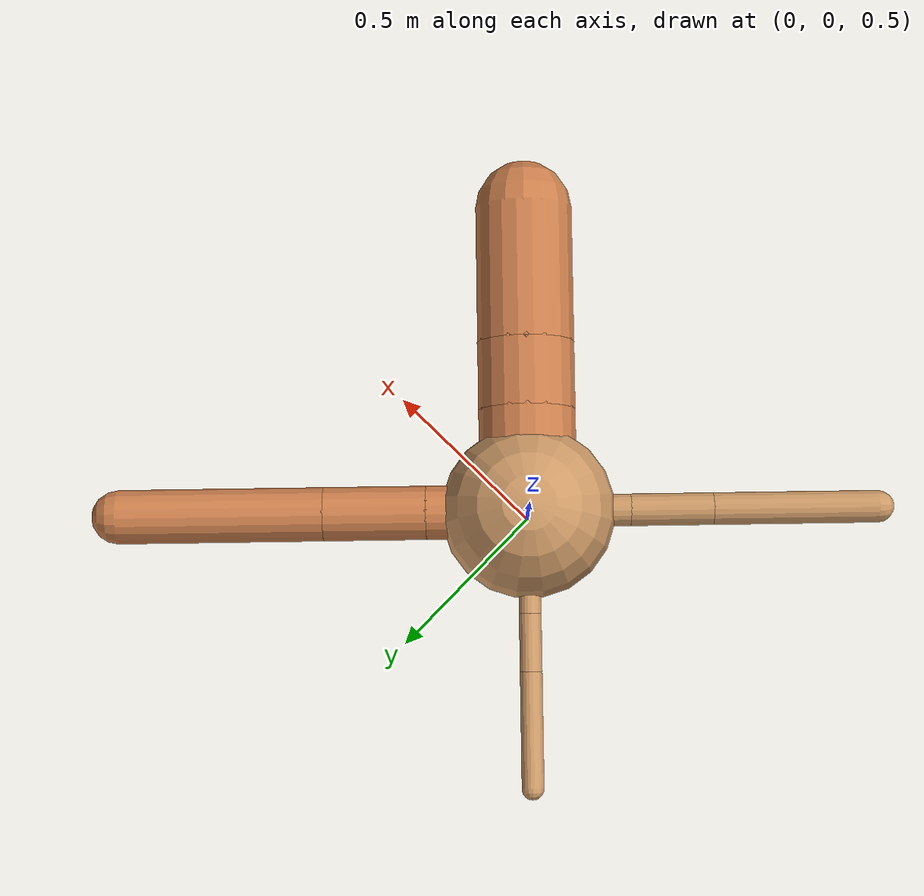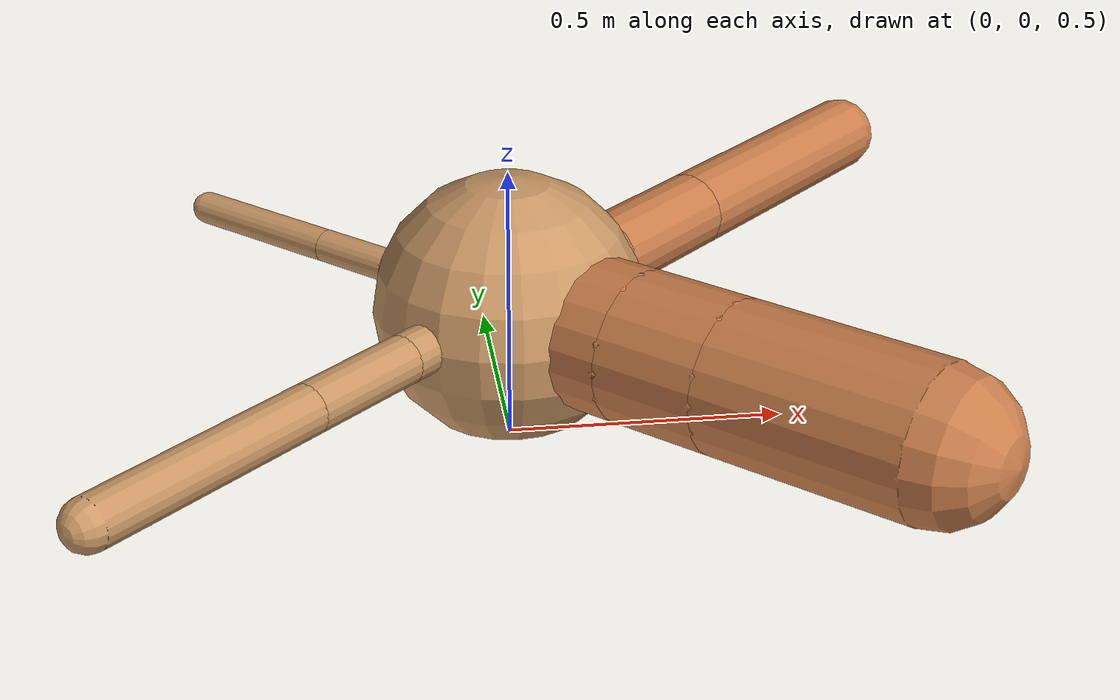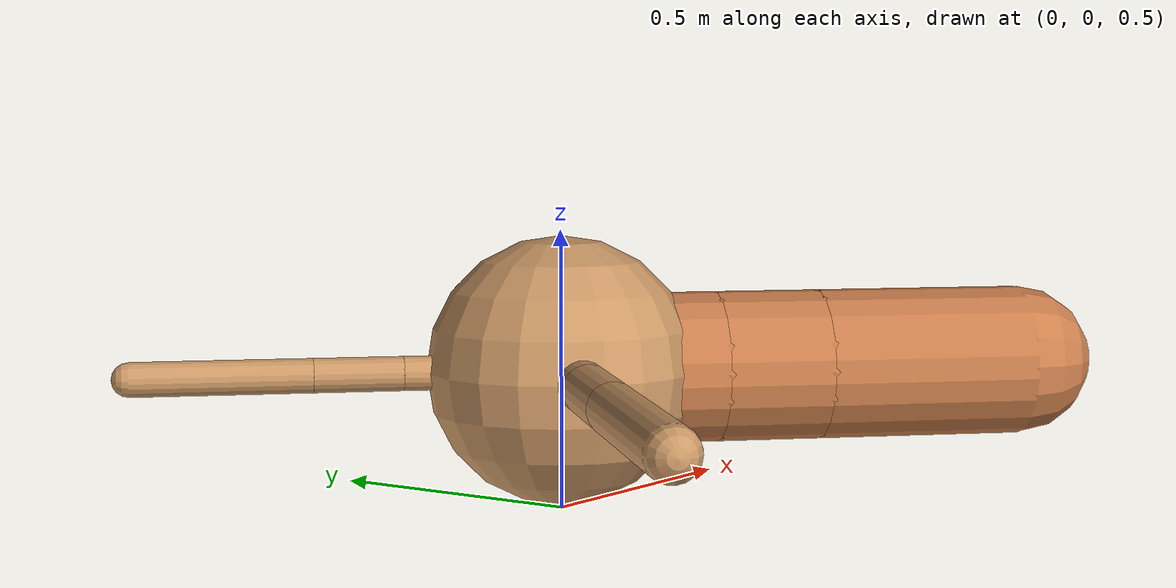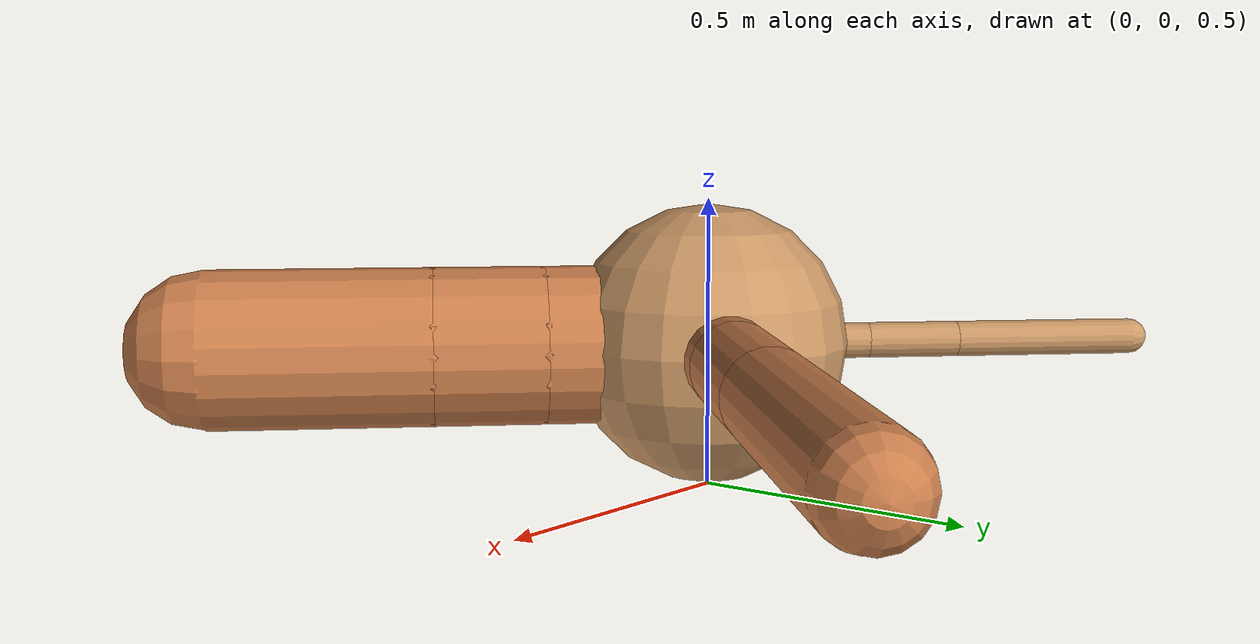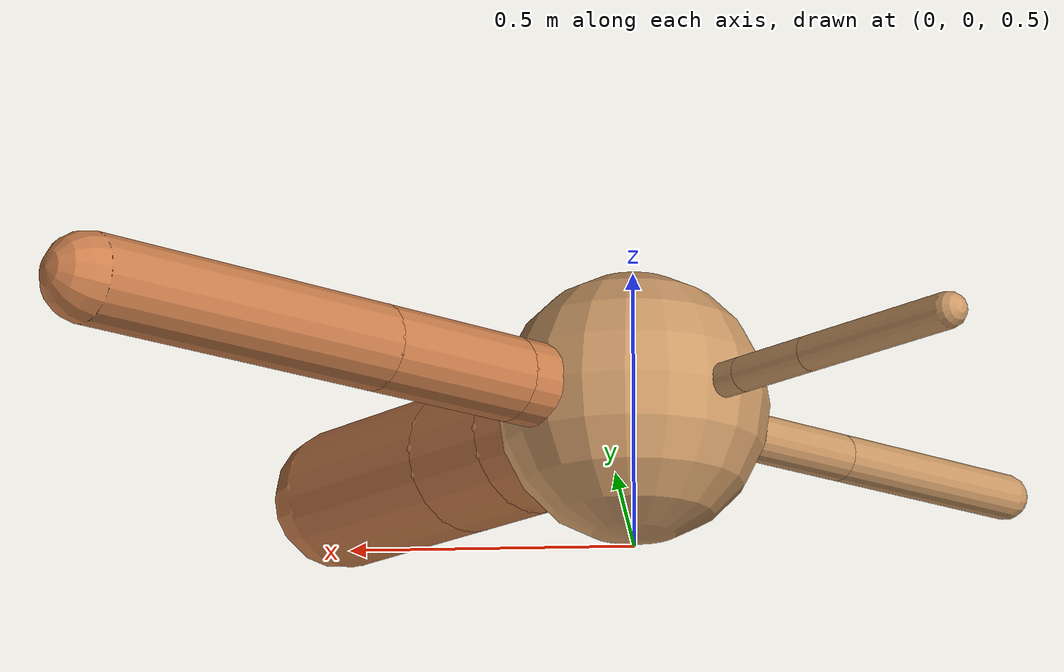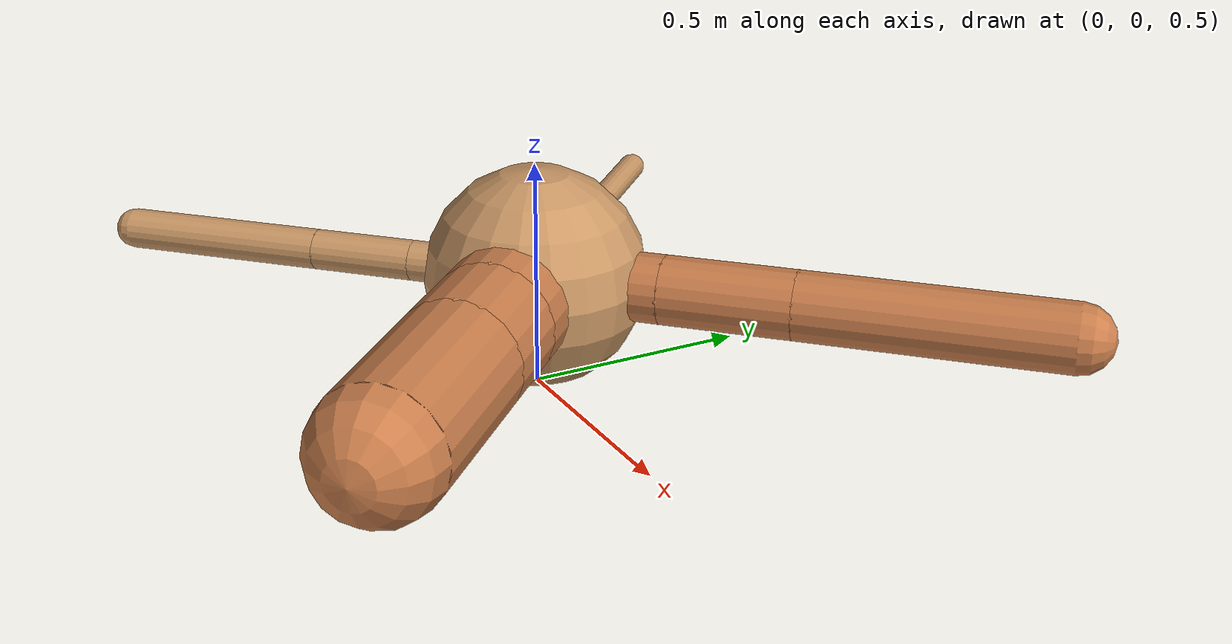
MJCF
<?xml version="1.0" ?>
<mujoco model="ant">

	<compiler angle="degree" coordinate="local" inertiafromgeom="true"/>

	<option integrator="RK4" timestep="0.01"/>

	<custom>

		<numeric data="0.0 0.0 0.55 1.0 0.0 0.0 0.0 0.0 1.0 0.0 -1.0 0.0 -1.0 0.0 1.0" name="init_qpos"/>

	</custom>

	<default>

		<joint armature="1" damping="1" limited="true"/>

		<geom conaffinity="0" condim="3" density="5.0" friction="1.5 0.1 0.1" margin="0.01" rgba="0.8 0.6 0.4 1"/>

	</default>

	<worldbody>

		<body name="torso" pos="0 0 0.75">

			<geom name="torso_geom" pos="0 0 0" size="0.24111623805399324" type="sphere"/>

			<!--joint armature="0" damping="0" limited="false" margin="0.01" name="root" pos="0 0 0" type="free"/-->

			<body name="front_left_leg" pos="0 0 0">

				<geom fromto="0 0 0 0.2 0.2 0" name="aux_1_geom" size="0.07452062968245315" type="capsule" rgba=".8 .5 .3 1"/>

				<body name="aux_1" pos="0.2 0.2 0">

					<joint axis="0 0 1" name="hip_1" pos="0.0 0.0 0.0" range="-40 40" type="hinge"/>

					<geom fromto="0 0 0 0.20026233468109883 0.20026233468109883 0" name="left_leg_geom" size="0.07452062968245315" type="capsule" rgba=".8 .5 .3 1"/>

					<body pos="0.20026233468109883 0.20026233468109883 0" name="front_left_foot">

						<joint axis="-1 1 0" name="ankle_1" pos="0.0 0.0 0.0" range="30 100" type="hinge"/>

						<geom fromto="0 0 0 0.40052466936219766 0.40052466936219766 0" name="left_ankle_geom" size="0.07452062968245315" type="capsule" rgba=".8 .5 .3 1"/>

					</body>

				</body>

			</body>

			<body name="front_right_leg" pos="0 0 0">

				<geom fromto="0 0 0 -0.2 0.2 0" name="aux_2_geom" size="0.030710288970911288" type="capsule"/>

				<body name="aux_2" pos="-0.2 0.2 0">

					<joint axis="0 0 1" name="hip_2" pos="0.0 0.0 0.0" range="-40 40" type="hinge"/>

					<geom fromto="0 0 0 -0.11224775442768864 0.11224775442768864 0" name="right_leg_geom" size="0.030710288970911288" type="capsule"/>

					<body pos="-0.11224775442768864 0.11224775442768864 0" name="front_right_foot">

						<joint axis="1 1 0" name="ankle_2" pos="0.0 0.0 0.0" range="-100 -30" type="hinge"/>

						<geom fromto="0 0 0 -0.22449550885537728 0.22449550885537728 0" name="right_ankle_geom" size="0.030710288970911288" type="capsule"/>

					</body>

				</body>

			</body>

			<body name="left_back_leg" pos="0 0 0">

				<geom fromto="0 0 0 -0.2 -0.2 0" name="aux_3_geom" size="0.044469571411409795" type="capsule"/>

				<body name="aux_3" pos="-0.2 -0.2 0">

					<joint axis="0 0 1" name="hip_3" pos="0.0 0.0 0.0" range="-40 40" type="hinge"/>

					<geom fromto="0 0 0 -0.16121505301354735 -0.16121505301354735 0" name="back_leg_geom" size="0.044469571411409795" type="capsule"/>

					<body pos="-0.16121505301354735 -0.16121505301354735 0" name="left_back_foot">

						<joint axis="-1 1 0" name="ankle_3" pos="0.0 0.0 0.0" range="-100 -30" type="hinge"/>

						<geom fromto="0 0 0 -0.3224301060270947 -0.3224301060270947 0" name="third_ankle_geom" size="0.044469571411409795" type="capsule"/>

					</body>

				</body>

			</body>

			<body name="right_back_leg" pos="0 0 0">

				<geom fromto="0 0 0 0.2 -0.2 0" name="aux_4_geom" size="0.13590075490425033" type="capsule" rgba=".8 .5 .3 1"/>

				<body name="aux_4" pos="0.2 -0.2 0">

					<joint axis="0 0 1" name="hip_4" pos="0.0 0.0 0.0" range="-40 40" type="hinge"/>

					<geom fromto="0 0 0 0.13456025914325576 -0.13456025914325576 0" name="rightback_leg_geom" size="0.13590075490425033" type="capsule" rgba=".8 .5 .3 1"/>

					<body pos="0.13456025914325576 -0.13456025914325576 0" name="right_back_foot">

						<joint axis="1 1 0" name="ankle_4" pos="0.0 0.0 0.0" range="30 100" type="hinge"/>

						<geom fromto="0 0 0 0.2691205182865115 -0.2691205182865115 0" name="fourth_ankle_geom" size="0.13590075490425033" type="capsule" rgba=".8 .5 .3 1"/>

					</body>

				</body>

			</body>

		</body>

	</worldbody>

	<actuator>

		<motor ctrllimited="true" ctrlrange="-1.0 1.0" joint="hip_4" gear="150"/>

		<motor ctrllimited="true" ctrlrange="-1.0 1.0" joint="ankle_4" gear="150"/>

		<motor ctrllimited="true" ctrlrange="-1.0 1.0" joint="hip_1" gear="150"/>

		<motor ctrllimited="true" ctrlrange="-1.0 1.0" joint="ankle_1" gear="150"/>

		<motor ctrllimited="true" ctrlrange="-1.0 1.0" joint="hip_2" gear="150"/>

		<motor ctrllimited="true" ctrlrange="-1.0 1.0" joint="ankle_2" gear="150"/>

		<motor ctrllimited="true" ctrlrange="-1.0 1.0" joint="hip_3" gear="150"/>

		<motor ctrllimited="true" ctrlrange="-1.0 1.0" joint="ankle_3" gear="150"/>

	</actuator>

</mujoco>
